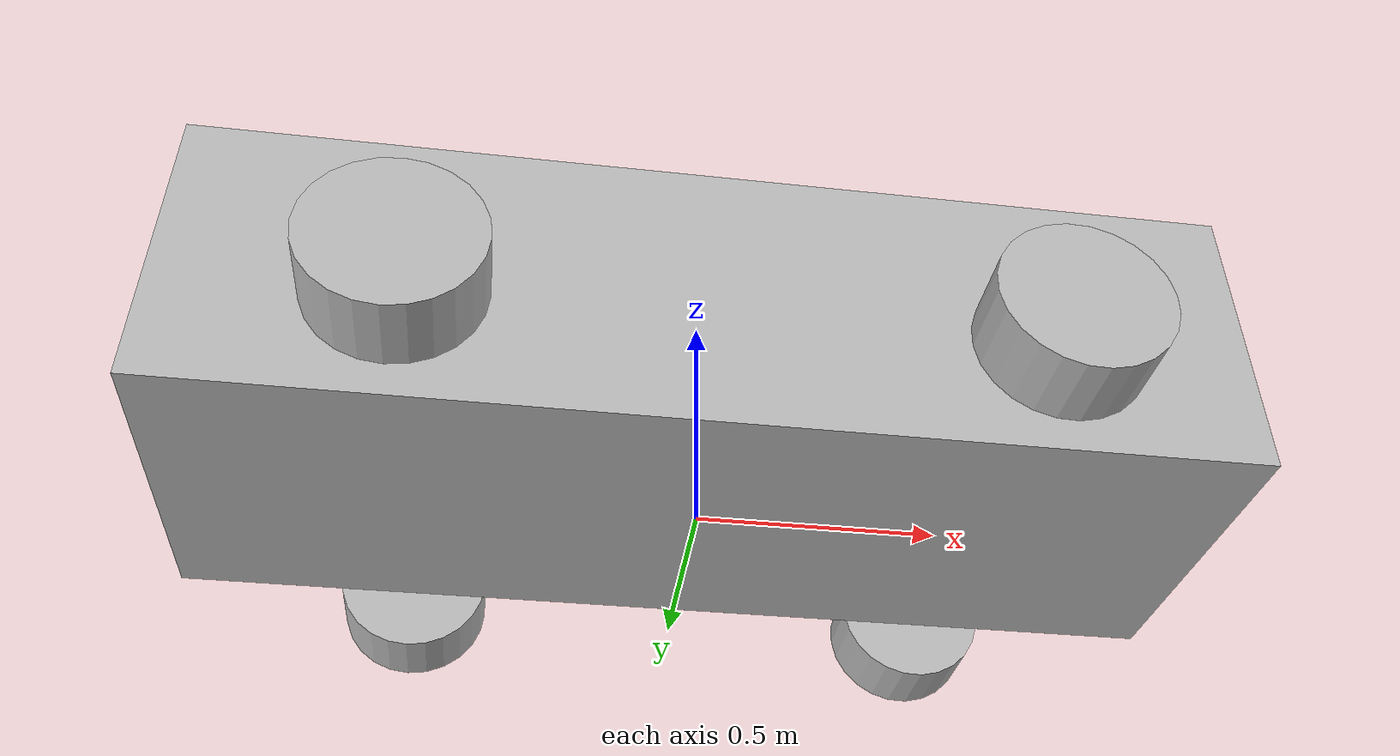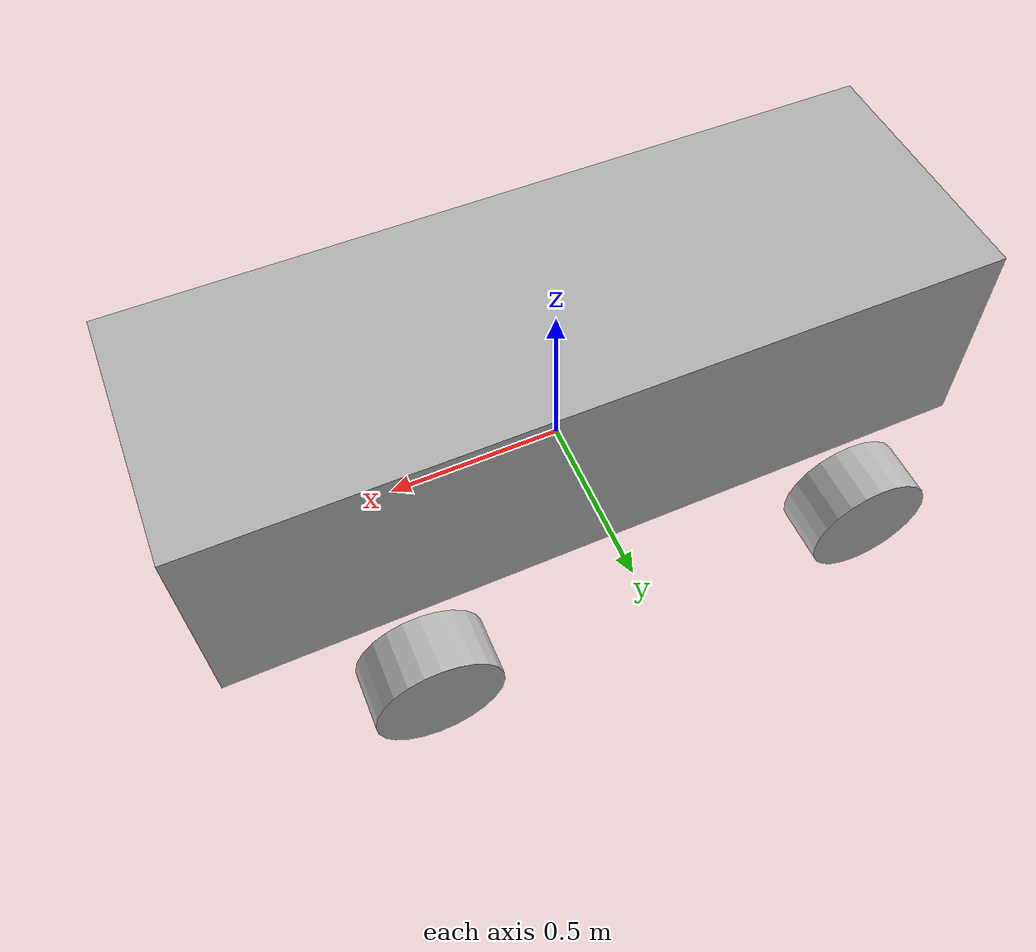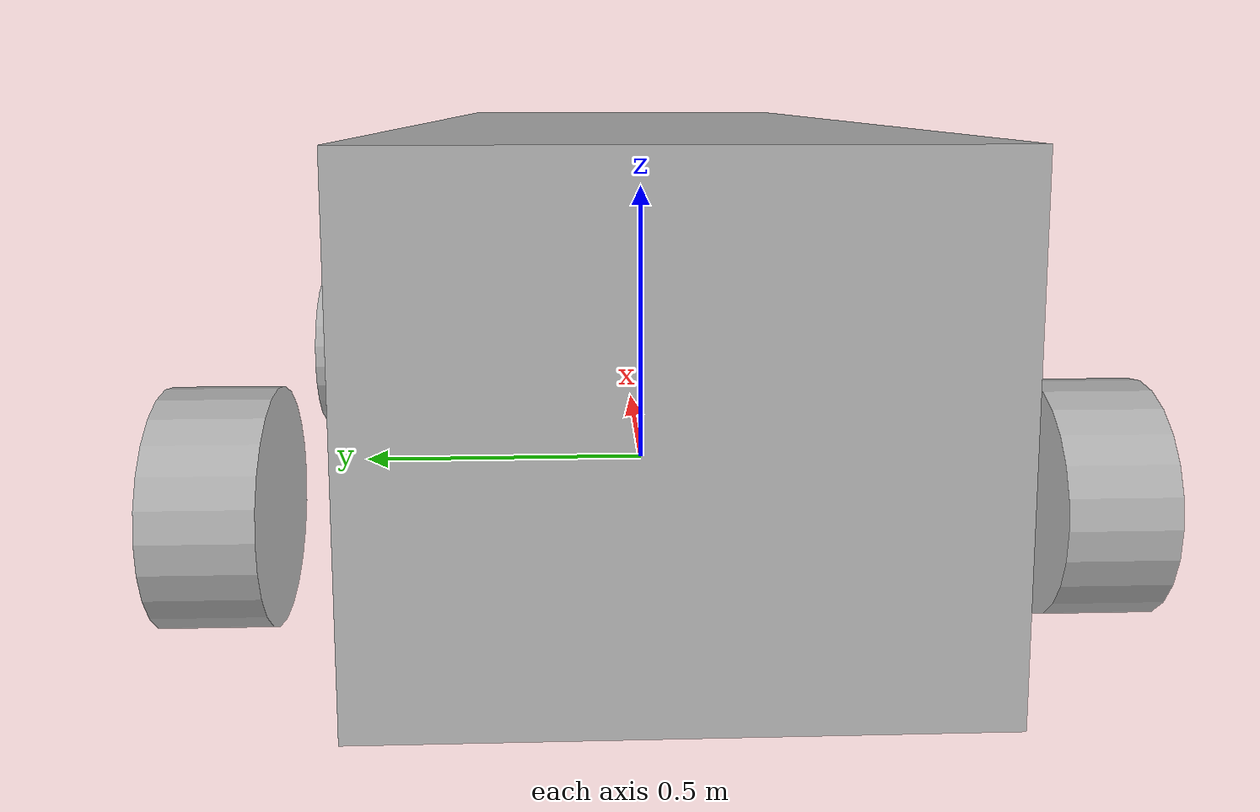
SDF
<?xml version="1.0" ?>

<sdf version="1.6">
  <model name="QEV2">
    <link name="chassis">
      <pose>0 0 0.3  0 0 0</pose>
      <inertial>
        <mass>46</mass>
        <inertia>
          <ixx>3.5923125</ixx>
          <iyy>19.4891458333</iyy>
          <izz>20.0385583333</izz>
          <ixy>0</ixy>
          <ixz>0</ixz>
          <iyz>0</iyz>
        </inertia>
      </inertial>
      <collision name="collision">
        <geometry>
          <box>
            <size>2.165 0.735 0.63</size>
          </box>
        </geometry>
      </collision>
      <visual name="visual">
        <geometry>
          <box>
            <size>2.165 0.735 0.63</size>
          </box>
        </geometry>
      </visual>
    </link>

    <link name="wheel_front_left">
      <pose>0.6 0.6 0.1 -1.5707963267948966 -0.08726646259971647 0</pose>
      <inertial>
        <mass>3</mass>
        <inertia>
          <ixx>0.0262499475</ixx>
          <iyy>0.0262499475</iyy>
          <izz>0.040887015</izz>
          <ixy>0</ixy>
          <ixz>0</ixz>
          <iyz>0</iyz>
        </inertia>
      </inertial>
      <collision name="collision">
        <geometry>
          <cylinder>
            <radius>.1651</radius>
            <length>.1524</length>
          </cylinder>
        </geometry>
      </collision>
      <visual name="visual">
        <geometry>
          <cylinder>
            <radius>.1651</radius>
            <length>.1524</length>
          </cylinder>
        </geometry>
      </visual>
    </link>

    <joint name="wheel_front_left_steer_spin" type="universal">
      <parent>chassis</parent>
      <child>wheel_front_left</child>
      <axis>
        <xyz>0 -1 0</xyz>
        <limit>
          <lower>-0.6108652381980153</lower>
          <upper>0.6108652381980153</upper>
        </limit>
      </axis>
      <axis2>
        <xyz>0 0 1</xyz>
      </axis2>
    </joint>

    <link name="wheel_front_right">
      <pose>0.6 -0.6 0.1 -1.5707963267948966 -0.08726646259971647 0</pose>
      <inertial>
        <mass>3</mass>
        <inertia>
          <ixx>0.0262499475</ixx>
          <iyy>0.0262499475</iyy>
          <izz>0.040887015</izz>
          <ixy>0</ixy>
          <ixz>0</ixz>
          <iyz>0</iyz>
        </inertia>
      </inertial>
      <collision name="collision">
        <geometry>
          <cylinder>
            <radius>.1651</radius>
            <length>.1524</length>
          </cylinder>
        </geometry>
      </collision>
      <visual name="visual">
        <geometry>
          <cylinder>
            <radius>.1651</radius>
            <length>.1524</length>
          </cylinder>
        </geometry>
      </visual>
    </link>

    <joint name="wheel_front_right_steer_spin" type="universal">
      <parent>chassis</parent>
      <child>wheel_front_right</child>
      <axis>
        <xyz>0 -1 0</xyz>
        <limit>
          <lower>-0.6108652381980153</lower>
          <upper>0.6108652381980153</upper>
        </limit>
      </axis>
      <axis2>
        <xyz>0 0 1</xyz>
      </axis2>
    </joint>

    <link name="wheel_rear_left">
      <pose>-0.6 0.6 0.1 -1.5707963267948966 0 0</pose>
      <inertial>
        <mass>3</mass>
        <inertia>
          <ixx>0.0262499475</ixx>
          <iyy>0.0262499475</iyy>
          <izz>0.040887015</izz>
          <ixy>0</ixy>
          <ixz>0</ixz>
          <iyz>0</iyz>
        </inertia>
      </inertial>
      <collision name="collision">
        <geometry>
          <cylinder>
            <radius>.1651</radius>
            <length>.1524</length>
          </cylinder>
        </geometry>
      </collision>
      <visual name="visual">
        <geometry>
          <cylinder>
            <radius>.1651</radius>
            <length>.1524</length>
          </cylinder>
        </geometry>
      </visual>
    </link>
    <joint name="wheel_rear_left_spin" type="revolute">
      <parent>chassis</parent>
      <child>wheel_rear_left</child>
      <axis>
        <xyz>0 0 1</xyz>
      </axis>
    </joint>

    <link name="wheel_rear_right">
      <pose>-0.6 -0.6 0.1 -1.5707963267948966 0 0</pose>
      <inertial>
        <mass>3</mass>
        <inertia>
          <ixx>0.0262499475</ixx>
          <iyy>0.0262499475</iyy>
          <izz>0.040887015</izz>
          <ixy>0</ixy>
          <ixz>0</ixz>
          <iyz>0</iyz>
        </inertia>
      </inertial>
      <collision name="collision">
        <geometry>
          <cylinder>
            <radius>.1651</radius>
            <length>.1524</length>
          </cylinder>
        </geometry>
      </collision>
      <visual name="visual">
        <geometry>
          <cylinder>
            <radius>.1651</radius>
            <length>.1524</length>
          </cylinder>
        </geometry>
      </visual>
    </link>
    <joint name="wheel_rear_right_spin" type="revolute">
      <parent>chassis</parent>
      <child>wheel_rear_right</child>
      <axis>
        <xyz>0 0 1</xyz>
      </axis>
    </joint>

  </model>
</sdf>
